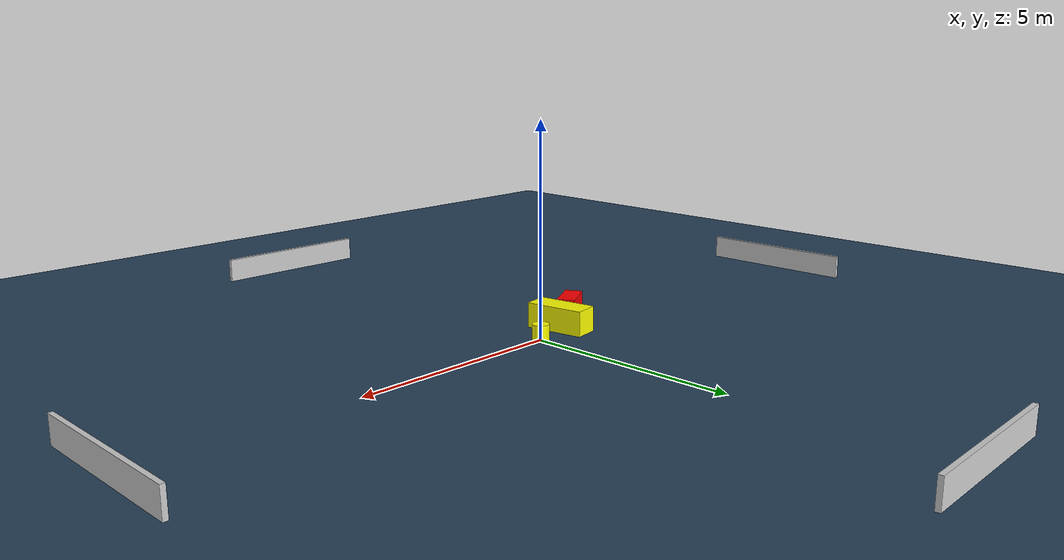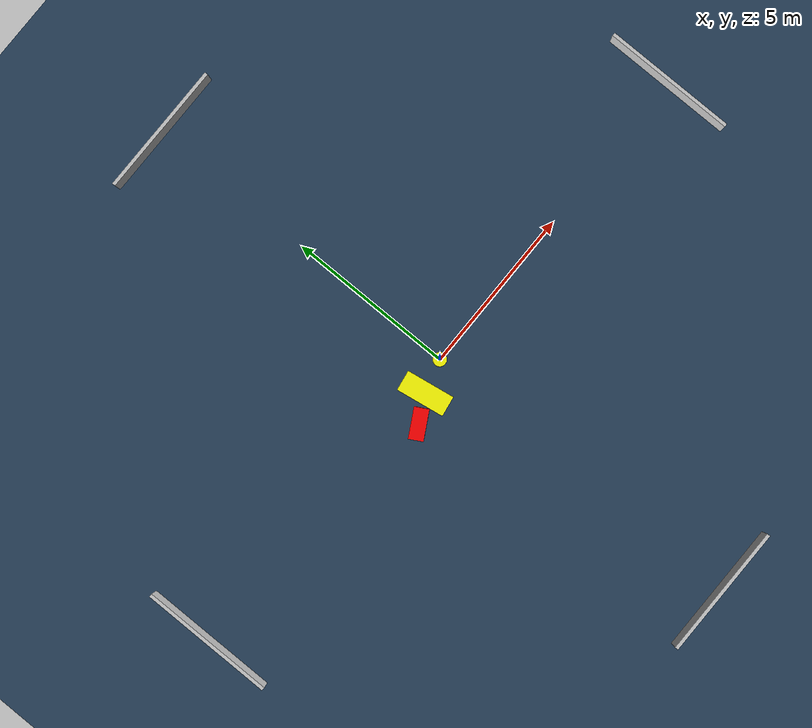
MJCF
<?xml version="1.0" ?>
<mujoco model="generated_environment">
  <option timestep="0.01" integrator="RK4" cone="elliptic"/>
  <default>
    <geom density="1"/>
  </default>
  <asset>
    <texture builtin="gradient" height="3072" name="skybox" rgb1="0.3 0.5 0.7" rgb2="0 0 0" type="skybox" width="512"/>
    <texture builtin="checker" height="300" name="groundplane" rgb1="0.2 0.3 0.4" rgb2="0.1 0.2 0.3" type="2d" width="300"/>
    <material name="groundplane" reflectance="0.2" texrepeat="5 5" texture="groundplane"/>
  </asset>
  <worldbody>
    <light dir="0 0 -1" directional="true" pos="0 0 1.5"/>
    <geom condim="3" friction="0.5 0.005 0.001" material="groundplane" name="floor" pos="0 0 0" size="0 0 0.05" type="plane"/>
    <body name="walls">
      <geom name="wall_1" condim="4" pos="-10.0 0.0 0.3" rgba="0.800000011920929 0.800000011920929 0.800000011920929 1.0" size="0.05 2.0 0.3" type="box"/>
      <geom name="wall_2" condim="4" pos="10.0 0.0 0.3" rgba="0.800000011920929 0.800000011920929 0.800000011920929 1.0" size="0.05 2.0 0.3" type="box"/>
      <geom name="wall_3" condim="4" pos="0.0 -10.0 0.3" rgba="0.800000011920929 0.800000011920929 0.800000011920929 1.0" size="2.0 0.05 0.3" type="box"/>
      <geom name="wall_4" condim="4" pos="0.0 10.0 0.3" rgba="0.800000011920929 0.800000011920929 0.800000011920929 1.0" size="2.0 0.05 0.3" type="box"/>
    </body>
    <body name="robot">
      <joint name="joint_x" type="slide" pos="0 0 0" axis="1 0 0"/>
      <joint name="joint_y" type="slide" pos="0 0 0" axis="0 1 0"/>
      <geom name="robot" type="cylinder" pos="0.0 0.0 0.2" size="0.2 0.2 0.0" mass="5.0" friction="1.0 0.005 0.0001" condim="4" rgba="1.0 1.0 0.0 1.0"/>
    </body>
    <body name="obstacle_1_movable">
      <geom name="obstacle_1_movable" condim="4" pos="-0.9816826740452468 -0.2909317732367939 0.3" euler="0 0 189.19095403816883" friction="0.0 0.005 0.001" rgba="1.0 1.0 0.0 1.0" size="0.3038200854369915 0.7185742847899537 0.3" type="box" mass="0.1"/>
      <joint type="free"/>
    </body>
    <body name="obstacle_2_static">
      <geom name="obstacle_2_static" condim="4" pos="-1.7446001430363411 -0.6859882553318883 0.3" euler="0 0 28.940038299446517" friction="0.0 0.005 0.001" rgba="1.0 0.0 0.0 1.0" size="0.4533327612548057 0.2163555099076071 0.3" type="box"/>
    </body>
  </worldbody>
  <actuator>
    <motor name="actuator_x" joint="joint_x" gear="1" ctrlrange="-1 1"/>
    <motor name="actuator_y" joint="joint_y" gear="1" ctrlrange="-1 1"/>
  </actuator>
</mujoco>
